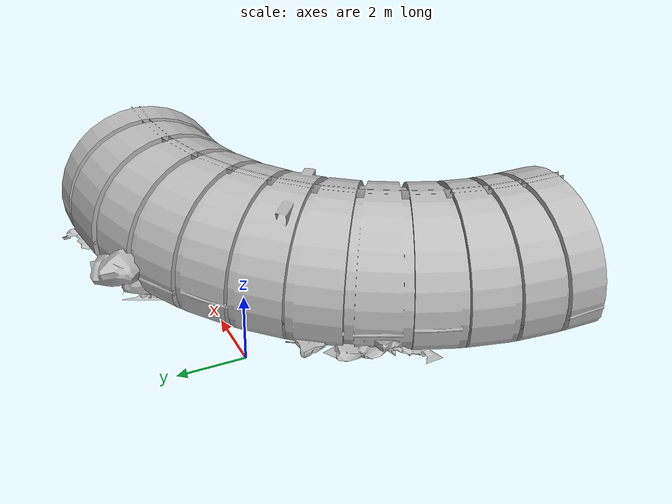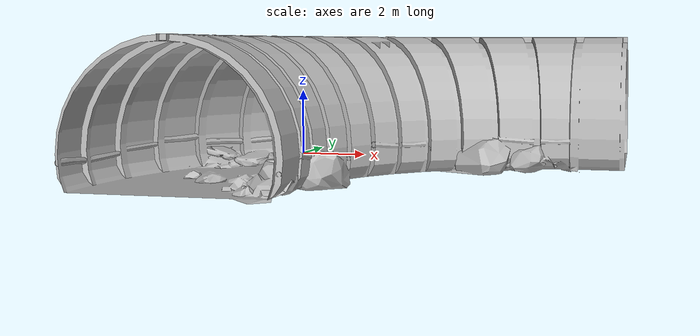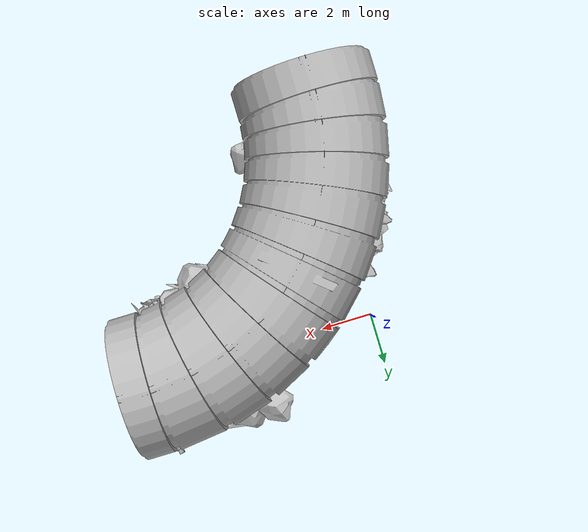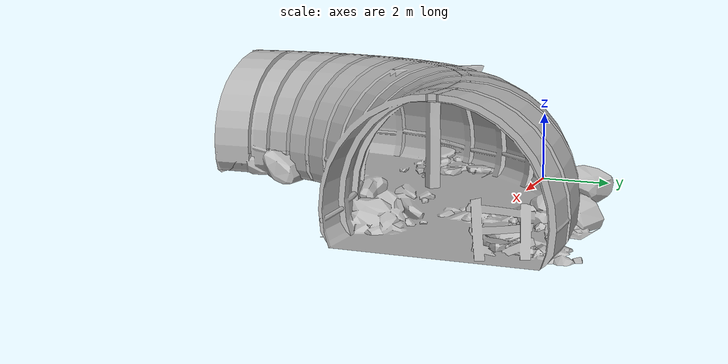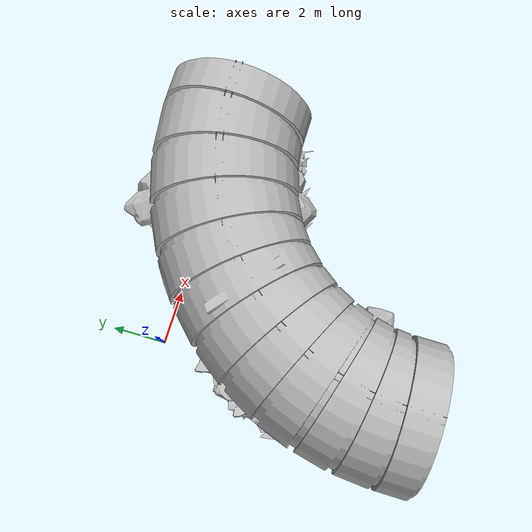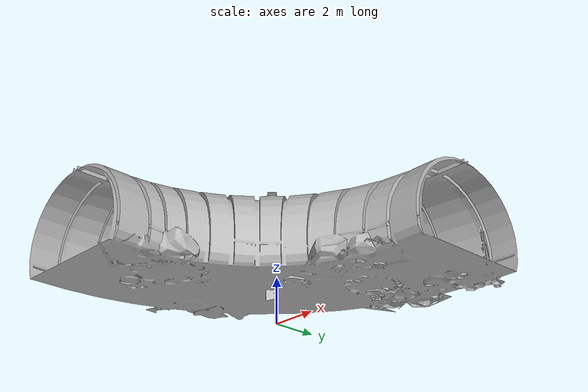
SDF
<?xml version="1.0" ?>
<sdf version="1.6">
  <model name="rough_tunnel_tile_90deg_turn">
    <static>true</static>
    <link name="link">
      <collision name="collision">
        <geometry>
          <mesh>
            <uri>model://rough_tunnel_tile_90deg_turn/meshes/90DegOne_Collider.DAE</uri>
          </mesh>
        </geometry>
      </collision>
      <collision name="collision_ground">
        <pose>3.5 -3.5 0 0 0 0</pose>
        <geometry>
          <box>
            <size>13 13 0.001</size>
          </box>
        </geometry>
      </collision>
      <visual name="visual">
        <geometry>
          <mesh>
            <uri>model://rough_tunnel_tile_90deg_turn/meshes/90DegOne.DAE</uri>
          </mesh>
        </geometry>
      </visual>
    </link>
  </model>
</sdf>
